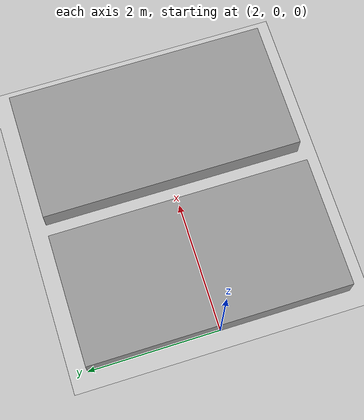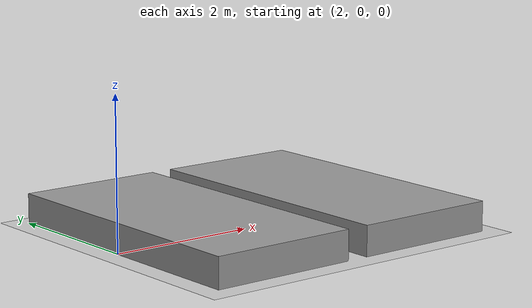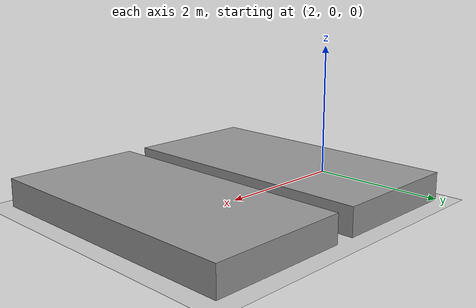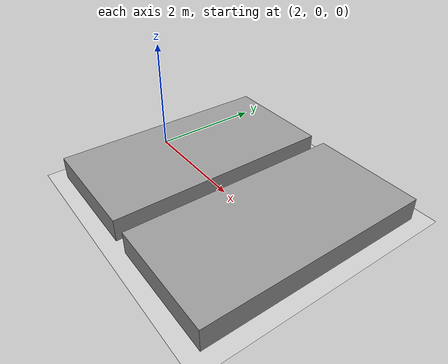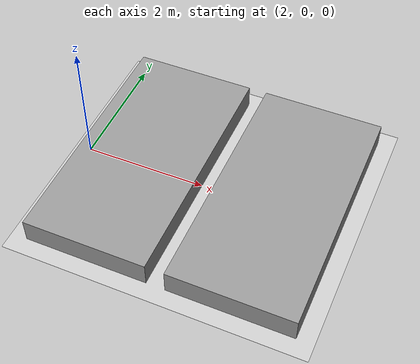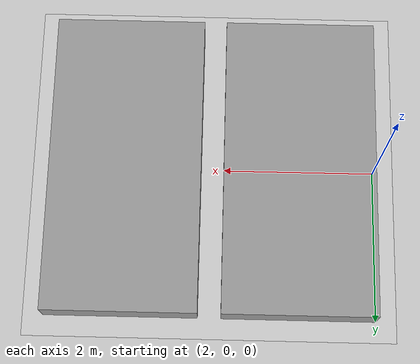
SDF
<?xml version="1.0" ?>
<sdf version="1.5">
    <world name="platforms">
        <physics type="ode">
            <max_step_size>0.0005</max_step_size>
            <real_time_factor>1</real_time_factor>
            <real_time_update_rate>2000</real_time_update_rate>
            <gravity>0 0 -9.81</gravity>
            <ode>
                <solver>
                    <type>quick</type>
                    <iters>50</iters>
                    <sor>1.3</sor>
                </solver>
                <constraints>
                    <cfm>0.0</cfm>
                    <erp>0.2</erp>
                    <contact_max_correcting_vel>10.0</contact_max_correcting_vel>
                    <contact_surface_layer>0.001</contact_surface_layer>
                </constraints>
            </ode>
        </physics>

        <scene>
            <sky>
                <clouds>
                    <speed>12</speed>
                </clouds>
            </sky>
        </scene>

        <!-- A global light source -->
        <include>
            <uri>model://sun</uri>
        </include>

        <!-- A ground plane -->
        <include>
            <uri>model://ground_plane</uri>
        </include>

        <!-- Two platforms in front of the robot -->
        <!-- Platform 1: 2m long (x), 4m wide (y), 0.4m high (z) -->
        <!-- Position: center at x=3.0m (front edge at x=2.0m from robot at origin) -->
        <model name="platform_1">
            <static>true</static>
            <link name="platform_1_link">
                <pose>3.0 0 0.2 0 0 0</pose>
                <collision name="platform_1_collision">
                    <geometry>
                        <box>
                            <size>2.0 4.0 0.4</size>
                        </box>
                    </geometry>
                    <surface>
                        <friction>
                            <ode>
                                <mu>1.0</mu>
                                <mu2>1.0</mu2>
                                <slip1>0.0</slip1>
                                <slip2>0.0</slip2>
                            </ode>
                        </friction>
                        <bounce>
                            <restitution_coefficient>0.0</restitution_coefficient>
                            <threshold>100000.0</threshold>
                        </bounce>
                        <contact>
                            <ode>
                                <soft_cfm>0.0</soft_cfm>
                                <soft_erp>0.2</soft_erp>
                                <kp>1e12</kp>
                                <kd>1</kd>
                                <max_vel>0.01</max_vel>
                                <min_depth>0.001</min_depth>
                            </ode>
                        </contact>
                    </surface>
                </collision>
                <visual name="platform_1_visual">
                    <geometry>
                        <box>
                            <size>2.0 4.0 0.4</size>
                        </box>
                    </geometry>
                    <material>
                        <script>
                            <uri>file://media/materials/scripts/gazebo.material</uri>
                            <name>Gazebo/Grey</name>
                        </script>
                        <ambient>0.8 0.8 0.8 1</ambient>
                    </material>
                </visual>
            </link>
        </model>

        <!-- Platform 2: Same size as platform 1 -->
        <!-- Position: center at x=5.3m (0.3m gap between platforms: 4.0+0.3+1.0=5.3) -->
        <model name="platform_2">
            <static>true</static>
            <link name="platform_2_link">
                <pose>5.3 0 0.2 0 0 0</pose>
                <collision name="platform_2_collision">
                    <geometry>
                        <box>
                            <size>2.0 4.0 0.4</size>
                        </box>
                    </geometry>
                    <surface>
                        <friction>
                            <ode>
                                <mu>1.0</mu>
                                <mu2>1.0</mu2>
                                <slip1>0.0</slip1>
                                <slip2>0.0</slip2>
                            </ode>
                        </friction>
                        <bounce>
                            <restitution_coefficient>0.0</restitution_coefficient>
                            <threshold>100000.0</threshold>
                        </bounce>
                        <contact>
                            <ode>
                                <soft_cfm>0.0</soft_cfm>
                                <soft_erp>0.2</soft_erp>
                                <kp>1e12</kp>
                                <kd>1</kd>
                                <max_vel>0.01</max_vel>
                                <min_depth>0.001</min_depth>
                            </ode>
                        </contact>
                    </surface>
                </collision>
                <visual name="platform_2_visual">
                    <geometry>
                        <box>
                            <size>2.0 4.0 0.4</size>
                        </box>
                    </geometry>
                    <material>
                        <script>
                            <uri>file://media/materials/scripts/gazebo.material</uri>
                            <name>Gazebo/Grey</name>
                        </script>
                        <ambient>0.8 0.8 0.8 1</ambient>
                    </material>
                </visual>
            </link>
        </model>

    </world>
</sdf>
